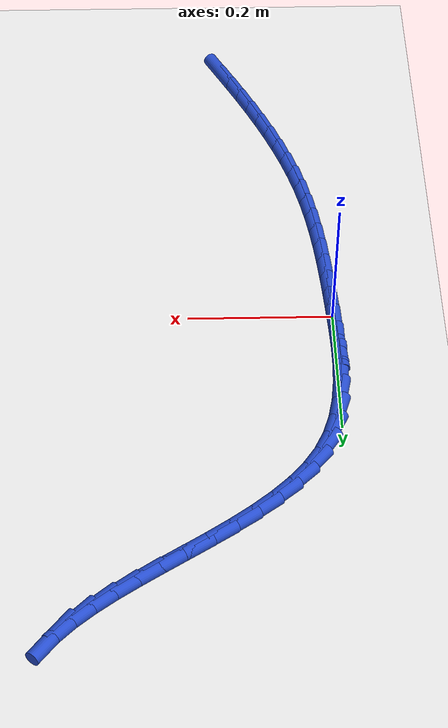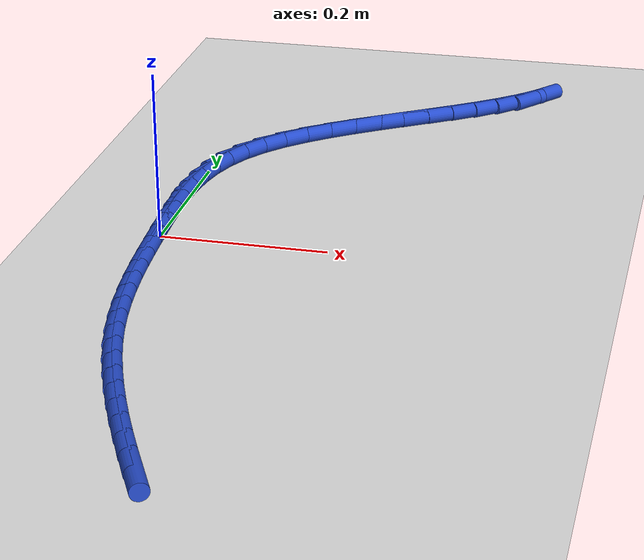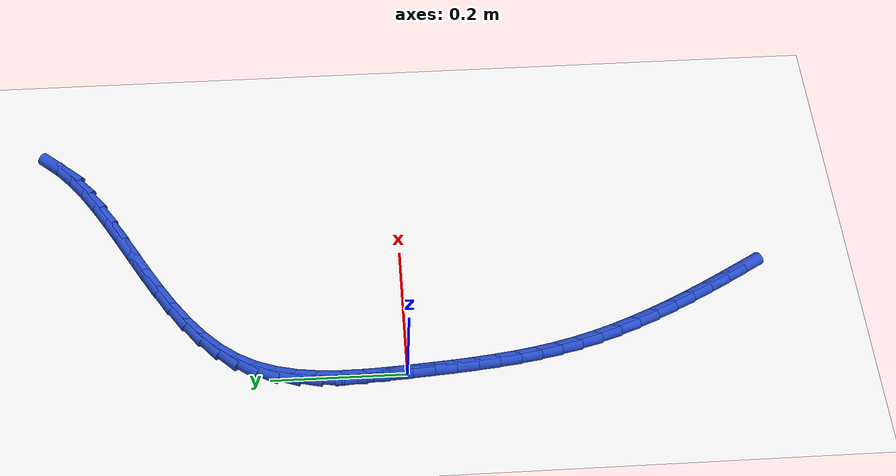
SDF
<sdf version="1.6">
 <world name="default">
  <model name="ground_plane">
   <static>1</static>
   <link name="link">
    <collision name="collision">
     <geometry><plane><normal>0 0 1</normal><size>100 100</size></plane></geometry>
     <surface><friction><ode><mu>100</mu><mu2>50</mu2></ode></friction></surface>
    </collision>
    <visual name="visual">
     <cast_shadows>0</cast_shadows>
     <geometry><plane><normal>0 0 1</normal><size>100 100</size></plane></geometry>
     <material>
      <script><uri>file://media/materials/scripts/gazebo.material</uri><name>Gazebo/WhiteGlow</name></script>
     </material>
    </visual>
   </link>
  </model>
  <model name="line">
   <link name="link_0">
    <pose>1.3010426069826053e-17 -6.245004513516506e-17 0.01 0 1.57 -1.5148569797541769</pose>
    <collision name="collision">
     <geometry><cylinder><radius>0.01</radius><length>0.08</length></cylinder></geometry>
    </collision>
    <visual name="visual">
     <material>
      <script><name>Gazebo/Blue</name><uri>file://media/materials/scripts/gazebo.material</uri></script>
     </material>
     <geometry><cylinder><radius>0.01</radius><length>0.08</length></cylinder></geometry>
    </visual>
   </link>
   <link name="link_1">
    <pose>-0.0018274710200580691 0.03263471131374366 0.01 0 1.57 -1.5335563678883095</pose>
    <collision name="collision">
     <geometry><cylinder><radius>0.01</radius><length>0.08</length></cylinder></geometry>
    </collision>
    <visual name="visual">
     <material>
      <script><name>Gazebo/Blue</name><uri>file://media/materials/scripts/gazebo.material</uri></script>
     </material>
     <geometry><cylinder><radius>0.01</radius><length>0.08</length></cylinder></geometry>
    </visual>
   </link>
   <link name="link_2">
    <pose>-0.003047726917026739 0.06538694281670723 0.01 0 1.57 -1.5680371676612026</pose>
    <collision name="collision">
     <geometry><cylinder><radius>0.01</radius><length>0.08</length></cylinder></geometry>
    </collision>
    <visual name="visual">
     <material>
      <script><name>Gazebo/Blue</name><uri>file://media/materials/scripts/gazebo.material</uri></script>
     </material>
     <geometry><cylinder><radius>0.01</radius><length>0.08</length></cylinder></geometry>
    </visual>
   </link>
   <link name="link_3">
    <pose>-0.003137669802470727 0.09798479340882538 0.01 0 1.57 1.5222367138957367</pose>
    <collision name="collision">
     <geometry><cylinder><radius>0.01</radius><length>0.08</length></cylinder></geometry>
    </collision>
    <visual name="visual">
     <material>
      <script><name>Gazebo/Blue</name><uri>file://media/materials/scripts/gazebo.material</uri></script>
     </material>
     <geometry><cylinder><radius>0.01</radius><length>0.08</length></cylinder></geometry>
    </visual>
   </link>
   <link name="link_4">
    <pose>-0.0015742017879547708 0.13015636199003294 0.01 0 1.57 1.4525211263077098</pose>
    <collision name="collision">
     <geometry><cylinder><radius>0.01</radius><length>0.08</length></cylinder></geometry>
    </collision>
    <visual name="visual">
     <material>
      <script><name>Gazebo/Blue</name><uri>file://media/materials/scripts/gazebo.material</uri></script>
     </material>
     <geometry><cylinder><radius>0.01</radius><length>0.08</length></cylinder></geometry>
    </visual>
   </link>
   <link name="link_5">
    <pose>0.0021657750149564024 0.16162974746026446 0.01 0 1.57 1.36274026349538</pose>
    <collision name="collision">
     <geometry><cylinder><radius>0.01</radius><length>0.08</length></cylinder></geometry>
    </collision>
    <visual name="visual">
     <material>
      <script><name>Gazebo/Blue</name><uri>file://media/materials/scripts/gazebo.material</uri></script>
     </material>
     <geometry><cylinder><radius>0.01</radius><length>0.08</length></cylinder></geometry>
    </visual>
   </link>
   <link name="link_6">
    <pose>0.008605358494698057 0.1921330487194548 0.01 0 1.57 1.2518622084039916</pose>
    <collision name="collision">
     <geometry><cylinder><radius>0.01</radius><length>0.08</length></cylinder></geometry>
    </collision>
    <visual name="visual">
     <material>
      <script><name>Gazebo/Blue</name><uri>file://media/materials/scripts/gazebo.material</uri></script>
     </material>
     <geometry><cylinder><radius>0.01</radius><length>0.08</length></cylinder></geometry>
    </visual>
   </link>
   <link name="link_7">
    <pose>0.01826764653970546 0.2213943646675386 0.01 0 1.57 1.120663291773073</pose>
    <collision name="collision">
     <geometry><cylinder><radius>0.01</radius><length>0.08</length></cylinder></geometry>
    </collision>
    <visual name="visual">
     <material>
      <script><name>Gazebo/Blue</name><uri>file://media/materials/scripts/gazebo.material</uri></script>
     </material>
     <geometry><cylinder><radius>0.01</radius><length>0.08</length></cylinder></geometry>
    </visual>
   </link>
   <link name="link_8">
    <pose>0.03167573614848738 0.24914179458922858 0.01 0 1.57 0.9797533914952946</pose>
    <collision name="collision">
     <geometry><cylinder><radius>0.01</radius><length>0.08</length></cylinder></geometry>
    </collision>
    <visual name="visual">
     <material>
      <script><name>Gazebo/Blue</name><uri>file://media/materials/scripts/gazebo.material</uri></script>
     </material>
     <geometry><cylinder><radius>0.01</radius><length>0.08</length></cylinder></geometry>
    </visual>
   </link>
   <link name="link_9">
    <pose>0.04915508737104207 0.2751888901492586 0.01 0 1.57 0.8589554902826203</pose>
    <collision name="collision">
     <geometry><cylinder><radius>0.01</radius><length>0.08</length></cylinder></geometry>
    </collision>
    <visual name="visual">
     <material>
      <script><name>Gazebo/Blue</name><uri>file://media/materials/scripts/gazebo.material</uri></script>
     </material>
     <geometry><cylinder><radius>0.01</radius><length>0.08</length></cylinder></geometry>
    </visual>
   </link>
   <link name="link_10">
    <pose>0.07027943407966906 0.2996742272120006 0.01 0 1.57 0.7637339579101653</pose>
    <collision name="collision">
     <geometry><cylinder><radius>0.01</radius><length>0.08</length></cylinder></geometry>
    </collision>
    <visual name="visual">
     <material>
      <script><name>Gazebo/Blue</name><uri>file://media/materials/scripts/gazebo.material</uri></script>
     </material>
     <geometry><cylinder><radius>0.01</radius><length>0.08</length></cylinder></geometry>
    </visual>
   </link>
   <link name="link_11">
    <pose>0.0944438118780425 0.3228136454959529 0.01 0 1.57 0.6912478016528538</pose>
    <collision name="collision">
     <geometry><cylinder><radius>0.01</radius><length>0.08</length></cylinder></geometry>
    </collision>
    <visual name="visual">
     <material>
      <script><name>Gazebo/Blue</name><uri>file://media/materials/scripts/gazebo.material</uri></script>
     </material>
     <geometry><cylinder><radius>0.01</radius><length>0.08</length></cylinder></geometry>
    </visual>
   </link>
   <link name="link_12">
    <pose>0.12104325636983655 0.3448229847196139 0.01 0 1.57 0.6383699507317454</pose>
    <collision name="collision">
     <geometry><cylinder><radius>0.01</radius><length>0.08</length></cylinder></geometry>
    </collision>
    <visual name="visual">
     <material>
      <script><name>Gazebo/Blue</name><uri>file://media/materials/scripts/gazebo.material</uri></script>
     </material>
     <geometry><cylinder><radius>0.01</radius><length>0.08</length></cylinder></geometry>
    </visual>
   </link>
   <link name="link_13">
    <pose>0.14947280315872527 0.36591808460148223 0.01 0 1.57 0.6024957956063791</pose>
    <collision name="collision">
     <geometry><cylinder><radius>0.01</radius><length>0.08</length></cylinder></geometry>
    </collision>
    <visual name="visual">
     <material>
      <script><name>Gazebo/Blue</name><uri>file://media/materials/scripts/gazebo.material</uri></script>
     </material>
     <geometry><cylinder><radius>0.01</radius><length>0.08</length></cylinder></geometry>
    </visual>
   </link>
   <link name="link_14">
    <pose>0.17912748784838273 0.38631478486005605 0.01 0 1.57 0.5818237485095887</pose>
    <collision name="collision">
     <geometry><cylinder><radius>0.01</radius><length>0.08</length></cylinder></geometry>
    </collision>
    <visual name="visual">
     <material>
      <script><name>Gazebo/Blue</name><uri>file://media/materials/scripts/gazebo.material</uri></script>
     </material>
     <geometry><cylinder><radius>0.01</radius><length>0.08</length></cylinder></geometry>
    </visual>
   </link>
   <link name="link_15">
    <pose>0.20940234604248303 0.4062289252138337 0.01 0 1.57 0.5754202109277422</pose>
    <collision name="collision">
     <geometry><cylinder><radius>0.01</radius><length>0.08</length></cylinder></geometry>
    </collision>
    <visual name="visual">
     <material>
      <script><name>Gazebo/Blue</name><uri>file://media/materials/scripts/gazebo.material</uri></script>
     </material>
     <geometry><cylinder><radius>0.01</radius><length>0.08</length></cylinder></geometry>
    </visual>
   </link>
   <link name="link_16">
    <pose>0.23969241334470043 0.42587634538131386 0.01 0 1.57 0.5832401030725402</pose>
    <collision name="collision">
     <geometry><cylinder><radius>0.01</radius><length>0.08</length></cylinder></geometry>
    </collision>
    <visual name="visual">
     <material>
      <script><name>Gazebo/Blue</name><uri>file://media/materials/scripts/gazebo.material</uri></script>
     </material>
     <geometry><cylinder><radius>0.01</radius><length>0.08</length></cylinder></geometry>
    </visual>
   </link>
   <link name="link_17">
    <pose>0.26939272535870895 0.44547288508099475 0.01 0 1.57 0.6061813132550719</pose>
    <collision name="collision">
     <geometry><cylinder><radius>0.01</radius><length>0.08</length></cylinder></geometry>
    </collision>
    <visual name="visual">
     <material>
      <script><name>Gazebo/Blue</name><uri>file://media/materials/scripts/gazebo.material</uri></script>
     </material>
     <geometry><cylinder><radius>0.01</radius><length>0.08</length></cylinder></geometry>
    </visual>
   </link>
   <link name="link_18">
    <pose>0.29789831768818276 0.4652343840313748 0.01 0 1.57 0.646200447591836</pose>
    <collision name="collision">
     <geometry><cylinder><radius>0.01</radius><length>0.08</length></cylinder></geometry>
    </collision>
    <visual name="visual">
     <material>
      <script><name>Gazebo/Blue</name><uri>file://media/materials/scripts/gazebo.material</uri></script>
     </material>
     <geometry><cylinder><radius>0.01</radius><length>0.08</length></cylinder></geometry>
    </visual>
   </link>
   <link name="link_19">
    <pose>0.3246042259367956 0.4853766819509522 0.01 0 1.57 0.7064703811190257</pose>
    <collision name="collision">
     <geometry><cylinder><radius>0.01</radius><length>0.08</length></cylinder></geometry>
    </collision>
    <visual name="visual">
     <material>
      <script><name>Gazebo/Blue</name><uri>file://media/materials/scripts/gazebo.material</uri></script>
     </material>
     <geometry><cylinder><radius>0.01</radius><length>0.08</length></cylinder></geometry>
    </visual>
   </link>
   <link name="link_20">
    <pose>0.3489054857082222 0.5061156185582257 0.01 0 1.57 0.7914613372405801</pose>
    <collision name="collision">
     <geometry><cylinder><radius>0.01</radius><length>0.08</length></cylinder></geometry>
    </collision>
    <visual name="visual">
     <material>
      <script><name>Gazebo/Blue</name><uri>file://media/materials/scripts/gazebo.material</uri></script>
     </material>
     <geometry><cylinder><radius>0.01</radius><length>0.08</length></cylinder></geometry>
    </visual>
   </link>
   <link name="link_21">
    <pose>0.3701971326061363 0.5276670335716935 0.01 0 1.57 0.9065861024835763</pose>
    <collision name="collision">
     <geometry><cylinder><radius>0.01</radius><length>0.08</length></cylinder></geometry>
    </collision>
    <visual name="visual">
     <material>
      <script><name>Gazebo/Blue</name><uri>file://media/materials/scripts/gazebo.material</uri></script>
     </material>
     <geometry><cylinder><radius>0.01</radius><length>0.08</length></cylinder></geometry>
    </visual>
   </link>
   <link name="link_233">
    <pose>0.13871447158254482 -0.5109670609992218 0.01 0 1.57 -1.095585619874963</pose>
    <collision name="collision">
     <geometry><cylinder><radius>0.01</radius><length>0.08</length></cylinder></geometry>
    </collision>
    <visual name="visual">
     <material>
      <script><name>Gazebo/Blue</name><uri>file://media/materials/scripts/gazebo.material</uri></script>
     </material>
     <geometry><cylinder><radius>0.01</radius><length>0.08</length></cylinder></geometry>
    </visual>
   </link>
   <link name="link_234">
    <pose>0.12417367177018374 -0.48270717827181553 0.01 0 1.57 -1.110952446400074</pose>
    <collision name="collision">
     <geometry><cylinder><radius>0.01</radius><length>0.08</length></cylinder></geometry>
    </collision>
    <visual name="visual">
     <material>
      <script><name>Gazebo/Blue</name><uri>file://media/materials/scripts/gazebo.material</uri></script>
     </material>
     <geometry><cylinder><radius>0.01</radius><length>0.08</length></cylinder></geometry>
    </visual>
   </link>
   <link name="link_235">
    <pose>0.11006590565493617 -0.45422127735145434 0.01 0 1.57 -1.1273212225227618</pose>
    <collision name="collision">
     <geometry><cylinder><radius>0.01</radius><length>0.08</length></cylinder></geometry>
    </collision>
    <visual name="visual">
     <material>
      <script><name>Gazebo/Blue</name><uri>file://media/materials/scripts/gazebo.material</uri></script>
     </material>
     <geometry><cylinder><radius>0.01</radius><length>0.08</length></cylinder></geometry>
    </visual>
   </link>
   <link name="link_236">
    <pose>0.09644300734177917 -0.42554347217581556 0.01 0 1.57 -1.1472002725270123</pose>
    <collision name="collision">
     <geometry><cylinder><radius>0.01</radius><length>0.08</length></cylinder></geometry>
    </collision>
    <visual name="visual">
     <material>
      <script><name>Gazebo/Blue</name><uri>file://media/materials/scripts/gazebo.material</uri></script>
     </material>
     <geometry><cylinder><radius>0.01</radius><length>0.08</length></cylinder></geometry>
    </visual>
   </link>
   <link name="link_237">
    <pose>0.08342383371141306 -0.3966692557214631 0.01 0 1.57 -1.170684889748608</pose>
    <collision name="collision">
     <geometry><cylinder><radius>0.01</radius><length>0.08</length></cylinder></geometry>
    </collision>
    <visual name="visual">
     <material>
      <script><name>Gazebo/Blue</name><uri>file://media/materials/scripts/gazebo.material</uri></script>
     </material>
     <geometry><cylinder><radius>0.01</radius><length>0.08</length></cylinder></geometry>
    </visual>
   </link>
   <link name="link_238">
    <pose>0.07112724394339195 -0.3675941196402779 0.01 0 1.57 -1.1978816226445557</pose>
    <collision name="collision">
     <geometry><cylinder><radius>0.01</radius><length>0.08</length></cylinder></geometry>
    </collision>
    <visual name="visual">
     <material>
      <script><name>Gazebo/Blue</name><uri>file://media/materials/scripts/gazebo.material</uri></script>
     </material>
     <geometry><cylinder><radius>0.01</radius><length>0.08</length></cylinder></geometry>
    </visual>
   </link>
   <link name="link_239">
    <pose>0.059672097217269966 -0.33831355558414083 0.01 0 1.57 -1.228899900071576</pose>
    <collision name="collision">
     <geometry><cylinder><radius>0.01</radius><length>0.08</length></cylinder></geometry>
    </collision>
    <visual name="visual">
     <material>
      <script><name>Gazebo/Blue</name><uri>file://media/materials/scripts/gazebo.material</uri></script>
     </material>
     <geometry><cylinder><radius>0.01</radius><length>0.08</length></cylinder></geometry>
    </visual>
   </link>
   <link name="link_240">
    <pose>0.04917725271260146 -0.30882305520493364 0.01 0 1.57 -1.2638410803427984</pose>
    <collision name="collision">
     <geometry><cylinder><radius>0.01</radius><length>0.08</length></cylinder></geometry>
    </collision>
    <visual name="visual">
     <material>
      <script><name>Gazebo/Blue</name><uri>file://media/materials/scripts/gazebo.material</uri></script>
     </material>
     <geometry><cylinder><radius>0.01</radius><length>0.08</length></cylinder></geometry>
    </visual>
   </link>
   <link name="link_241">
    <pose>0.03976156960893997 -0.2791181101545355 0.01 0 1.57 -1.3027846253456394</pose>
    <collision name="collision">
     <geometry><cylinder><radius>0.01</radius><length>0.08</length></cylinder></geometry>
    </collision>
    <visual name="visual">
     <material>
      <script><name>Gazebo/Blue</name><uri>file://media/materials/scripts/gazebo.material</uri></script>
     </material>
     <geometry><cylinder><radius>0.01</radius><length>0.08</length></cylinder></geometry>
    </visual>
   </link>
   <link name="link_242">
    <pose>0.031543907085839894 -0.24919421208482834 0.01 0 1.57 -1.344424685802346</pose>
    <collision name="collision">
     <geometry><cylinder><radius>0.01</radius><length>0.08</length></cylinder></geometry>
    </collision>
    <visual name="visual">
     <material>
      <script><name>Gazebo/Blue</name><uri>file://media/materials/scripts/gazebo.material</uri></script>
     </material>
     <geometry><cylinder><radius>0.01</radius><length>0.08</length></cylinder></geometry>
    </visual>
   </link>
   <link name="link_243">
    <pose>0.024599794195663945 -0.21904427516397246 0.01 0 1.57 -1.3829560001524013</pose>
    <collision name="collision">
     <geometry><cylinder><radius>0.01</radius><length>0.08</length></cylinder></geometry>
    </collision>
    <visual name="visual">
     <material>
      <script><name>Gazebo/Blue</name><uri>file://media/materials/scripts/gazebo.material</uri></script>
     </material>
     <geometry><cylinder><radius>0.01</radius><length>0.08</length></cylinder></geometry>
    </visual>
   </link>
   <link name="link_244">
    <pose>0.018822484073143648 -0.18865037091458803 0.01 0 1.57 -1.416603249072842</pose>
    <collision name="collision">
     <geometry><cylinder><radius>0.01</radius><length>0.08</length></cylinder></geometry>
    </collision>
    <visual name="visual">
     <material>
      <script><name>Gazebo/Blue</name><uri>file://media/materials/scripts/gazebo.material</uri></script>
     </material>
     <geometry><cylinder><radius>0.01</radius><length>0.08</length></cylinder></geometry>
    </visual>
   </link>
   <link name="link_245">
    <pose>0.014057307541381311 -0.15799172021042662 0.01 0 1.57 -1.445178623327982</pose>
    <collision name="collision">
     <geometry><cylinder><radius>0.01</radius><length>0.08</length></cylinder></geometry>
    </collision>
    <visual name="visual">
     <material>
      <script><name>Gazebo/Blue</name><uri>file://media/materials/scripts/gazebo.material</uri></script>
     </material>
     <geometry><cylinder><radius>0.01</radius><length>0.08</length></cylinder></geometry>
    </visual>
   </link>
   <link name="link_246">
    <pose>0.010149595207692954 -0.1270475439124035 0.01 0 1.57 -1.4685978423799977</pose>
    <collision name="collision">
     <geometry><cylinder><radius>0.01</radius><length>0.08</length></cylinder></geometry>
    </collision>
    <visual name="visual">
     <material>
      <script><name>Gazebo/Blue</name><uri>file://media/materials/scripts/gazebo.material</uri></script>
     </material>
     <geometry><cylinder><radius>0.01</radius><length>0.08</length></cylinder></geometry>
    </visual>
   </link>
   <link name="link_247">
    <pose>0.0069446776793946115 -0.09579706288143391 0.01 0 1.57 -1.4868585793934583</pose>
    <collision name="collision">
     <geometry><cylinder><radius>0.01</radius><length>0.08</length></cylinder></geometry>
    </collision>
    <visual name="visual">
     <material>
      <script><name>Gazebo/Blue</name><uri>file://media/materials/scripts/gazebo.material</uri></script>
     </material>
     <geometry><cylinder><radius>0.01</radius><length>0.08</length></cylinder></geometry>
    </visual>
   </link>
   <link name="link_248">
    <pose>0.004287885563802317 -0.06421949797843327 0.01 0 1.57 -1.500020278490087</pose>
    <collision name="collision">
     <geometry><cylinder><radius>0.01</radius><length>0.08</length></cylinder></geometry>
    </collision>
    <visual name="visual">
     <material>
      <script><name>Gazebo/Blue</name><uri>file://media/materials/scripts/gazebo.material</uri></script>
     </material>
     <geometry><cylinder><radius>0.01</radius><length>0.08</length></cylinder></geometry>
    </visual>
   </link>
   <link name="link_249">
    <pose>0.0020245494682321038 -0.0322940700643168 0.01 0 1.57 -1.508187202976886</pose>
    <collision name="collision">
     <geometry><cylinder><radius>0.01</radius><length>0.08</length></cylinder></geometry>
    </collision>
    <visual name="visual">
     <material>
      <script><name>Gazebo/Blue</name><uri>file://media/materials/scripts/gazebo.material</uri></script>
     </material>
     <geometry><cylinder><radius>0.01</radius><length>0.08</length></cylinder></geometry>
    </visual>
   </link>
   <link name="link_250">
    <pose>4.336808689942018e-19 1.3183898417423734e-16 0.01 0 1.57 -1.5114955282843217</pose>
    <collision name="collision">
     <geometry><cylinder><radius>0.01</radius><length>0.08</length></cylinder></geometry>
    </collision>
    <visual name="visual">
     <material>
      <script><name>Gazebo/Blue</name><uri>file://media/materials/scripts/gazebo.material</uri></script>
     </material>
     <geometry><cylinder><radius>0.01</radius><length>0.08</length></cylinder></geometry>
    </visual>
   </link>
   <link name="link_251">
    <pose>-0.0019404322335779562 0.03268349135360222 0.01 0 1.57 -1.5101045595869211</pose>
    <collision name="collision">
     <geometry><cylinder><radius>0.01</radius><length>0.08</length></cylinder></geometry>
    </collision>
    <visual name="visual">
     <material>
      <script><name>Gazebo/Blue</name><uri>file://media/materials/scripts/gazebo.material</uri></script>
     </material>
     <geometry><cylinder><radius>0.01</radius><length>0.08</length></cylinder></geometry>
    </visual>
   </link>
   <link name="link_252">
    <pose>-0.003951416625185735 0.06577718313557412 0.01 0 1.57 -1.51079567769355</pose>
    <collision name="collision">
     <geometry><cylinder><radius>0.01</radius><length>0.08</length></cylinder></geometry>
    </collision>
    <visual name="visual">
     <material>
      <script><name>Gazebo/Blue</name><uri>file://media/materials/scripts/gazebo.material</uri></script>
     </material>
     <geometry><cylinder><radius>0.01</radius><length>0.08</length></cylinder></geometry>
    </visual>
   </link>
  </model>
 </world>
</sdf>
